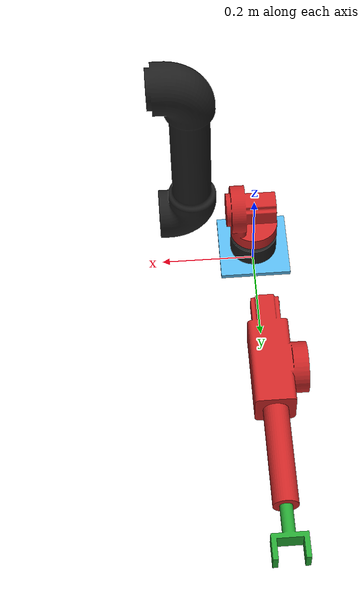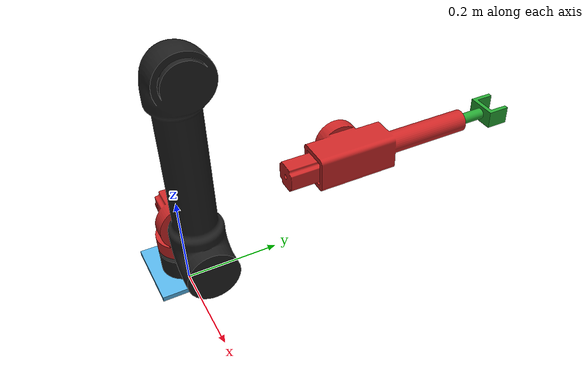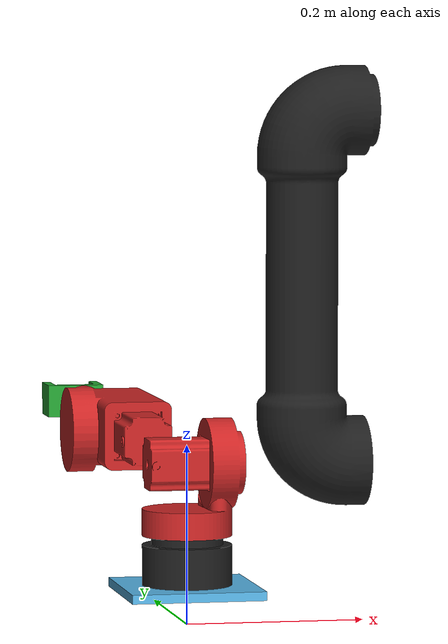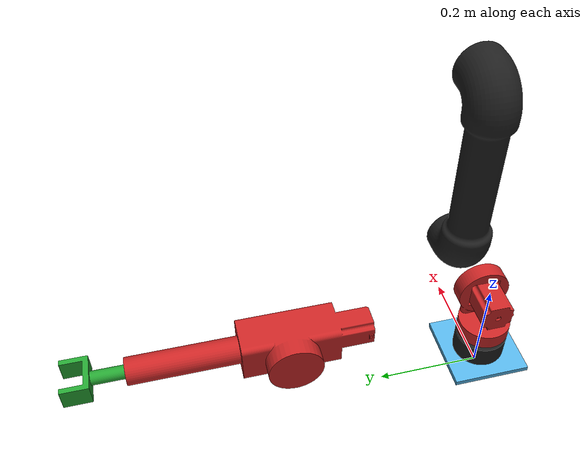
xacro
<?xml version='1.0' encoding='utf-8'?>
<robot xmlns:xacro="http://www.ros.org/wiki/xacro" name="sentinel">
    <!-- add more codes -->
    <link name="world"></link>
    <link name="base_link">
        <visual>
        <origin xyz="0.0 0.0 0.005"/>
            <geometry>
                <mesh filename="file:///$(find sentinel_description)/mesh/base_link.STL"/>
            </geometry>
        </visual>
        <collision>
            <contact_coefficients mu="0" kp="1.0" kd="1.0"/>
            <geometry>
                <mesh filename="file:///$(find sentinel_description)/mesh/base_link.STL"/>
            </geometry>
        </collision>
        <inertial>
            <origin xyz="0.0 0.0 0.0" rpy="0.0 0.0 0.0"/>
            <mass value="1.0"/>
            <inertia ixx="0.0003890077" ixy="0.0" ixz="0.0" iyy="0.0003890077" iyz="0.0" izz="0.0005310862"/>
        </inertial>
    </link>
    <link name="link_0">
        <visual>
            <geometry>
                <mesh filename="file:///$(find sentinel_description)/mesh/link_0.STL"/>
            </geometry>
        </visual>
        <collision>
            <contact_coefficients mu="0" kp="1.0" kd="1.0"/>
            <geometry>
                <mesh filename="file:///$(find sentinel_description)/mesh/link_0.STL"/>
            </geometry>
        </collision>
        <inertial>
            <origin xyz="0.0 0.0 0.0" rpy="0.0 0.0 0.0"/>
            <mass value="1.0"/>
            <inertia ixx="0.0003890077" ixy="0.0" ixz="0.0" iyy="0.0003890077" iyz="0.0" izz="0.0005310862"/>
        </inertial>
    </link>
    <link name="link_1">
        <visual>
            <geometry>
                <mesh filename="file:///$(find sentinel_description)/mesh/link_1.STL"/>
            </geometry>
        </visual>
        <collision>
            <contact_coefficients mu="0" kp="1.0" kd="1.0"/>
            <geometry>
                <mesh filename="file:///$(find sentinel_description)/mesh/link_1.STL"/>
            </geometry>
        </collision>
        <inertial>
            <origin xyz="0.0 0.0 0.0" rpy="0.0 0.0 0.0"/>
            <mass value="2.13412"/>
            <inertia ixx="0.0092143483" ixy="0.0000029017" ixz="-0.0001157018" iyy="0.0099694985" iyz="-0.00000219019" izz="0.0021104429"/>
        </inertial>
    </link>
    <link name="link_2">
        <visual>
            <geometry>
                <mesh filename="file:///$(find sentinel_description)/mesh/link_2.STL"/>
            </geometry>
        </visual>
        <collision>
            <contact_coefficients mu="0" kp="1.0" kd="1.0"/>
            <geometry>
                <mesh filename="file:///$(find sentinel_description)/mesh/link_2.STL"/>
            </geometry>
        </collision>
        <inertial>
            <origin xyz="0.0 0.0 0.0" rpy="0.0 0.0 0.0"/>
            <mass value="3.17536"/>
            <inertia ixx="0.0046929646" ixy="0.0" ixz="-0.007602469" iyy="0.196888" iyz="0.0" izz="0.195576"/>
        </inertial>
    </link>
    <link name="link_3">
        <visual>
            <geometry>
                <mesh filename="file:///$(find sentinel_description)/mesh/link_3.STL"/>
            </geometry>
        </visual>
        <collision>
            <contact_coefficients mu="0" kp="1.0" kd="1.0"/>
            <geometry>
                <mesh filename="file:///$(find sentinel_description)/mesh/link_3.STL"/>
            </geometry>
        </collision>
        <inertial>
            <origin xyz="0.0 0.0 0.0" rpy="0.0 0.0 0.0"/>
            <mass value="3.38524"/>
            <inertia ixx="0.0029246047" ixy="0.00000000132" ixz="-0.00000704893" iyy="0.04357027" iyz="-0.00000000006" izz="0.04298572"/>
        </inertial>
    </link>
    <link name="gripper">
        <visual>
            <geometry>
                <mesh filename="file:///$(find sentinel_description)/mesh/gripper.STL"/>
            </geometry>
        </visual>
        <collision>
            <contact_coefficients mu="0" kp="1.0" kd="1.0"/>
            <geometry>
                <mesh filename="file:///$(find sentinel_description)/mesh/gripper.STL"/>
            </geometry>
        </collision>
        <inertial>
            <origin xyz="0.0 0.0 0.0" rpy="0.0 0.0 0.0"/>
            <mass value="0.8945"/>
            <inertia ixx="0.0000831101" ixy="0.0" ixz="0.0" iyy="0.0081156101" iyz="0.0" izz="0.00005080097"/>
        </inertial>
    </link>

    <joint name="base_link_to_world" type="fixed">
       <parent link="world"/>
       <child link="base_link"/>
       <origin xyz="0.0 0.0 0.035"/>
     </joint>

     <joint name="base_to_link_0" type="fixed">
       <parent link="base_link"/>
       <child link="link_0"/>
       <origin xyz="0.0 0.0 0.035"/>
     </joint>

     <joint name="link_0_to_1" type="revolute">
       <parent link="link_0"/>
       <child link="link_1"/>
       <origin xyz="0.0 0.0 0.045"/>
       <axis xyz="0.0 0.0 1.0"/>
       <limit lower="-3" upper="3" effort="100.0" velocity="1.0"/>
       <dynamics damping="10.0" friction="10.0"/>
     </joint>

     <joint name="link_1_to_2" type="revolute">
       <parent link="link_1"/>
       <child link="link_2"/>
       <origin xyz="0.13 0.0 0.065" rpy="1.57079632679 0.0 1.57079632679"/>
       <axis xyz="0.0 0.0 1.0"/>
       <limit lower="0" upper="3" effort="100.0" velocity="1.0"/>
       <dynamics damping="10.0" friction="10.0"/>
     </joint>

     <joint name="link_2_to_3" type="revolute">
       <parent link="link_2"/>
       <child link="link_3"/>
       <origin xyz="0.39 0.0 -0.13" rpy="3.14159265359 0.0 0.0"/>
       <axis xyz="0.0 0.0 1.0"/>
       <limit lower="-2" upper="2" effort="100.0" velocity="1.0"/>
       <dynamics damping="10.0" friction="10.0"/>
     </joint>

    <joint name="link_3_to_gripper" type="fixed">
       <parent link="link_3"/>
       <child link="gripper"/>
       <origin xyz="0.36 0.0 0.0" rpy="0.0 1.57079632679 0.0"/>
    </joint>
    <xacro:include filename="ros2controller_gazebo.xacro" />
</robot>
